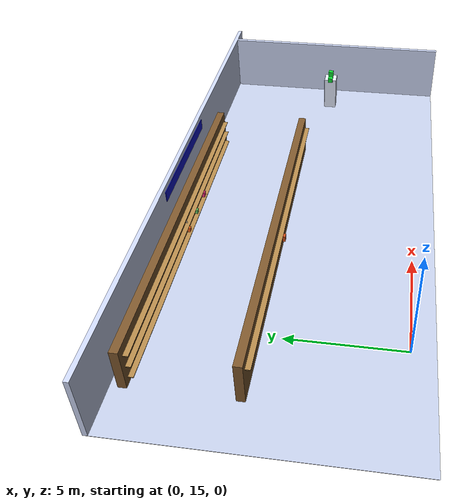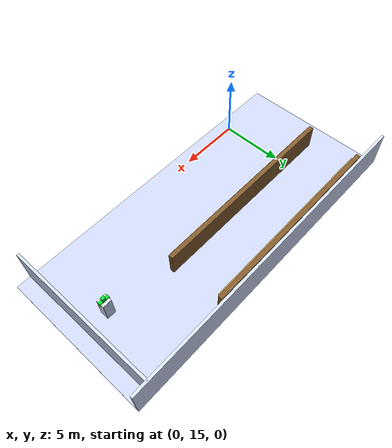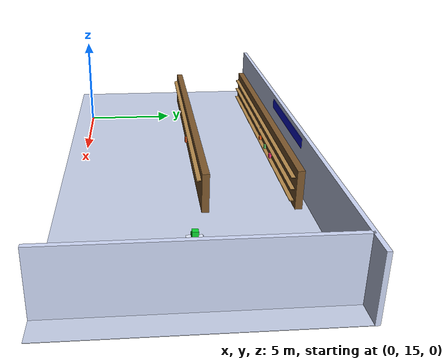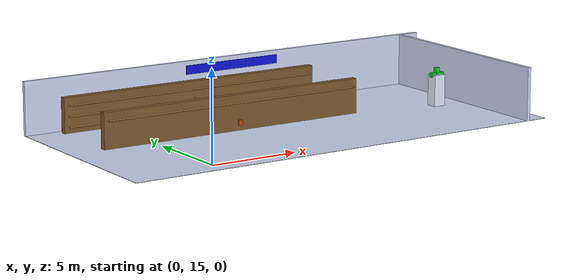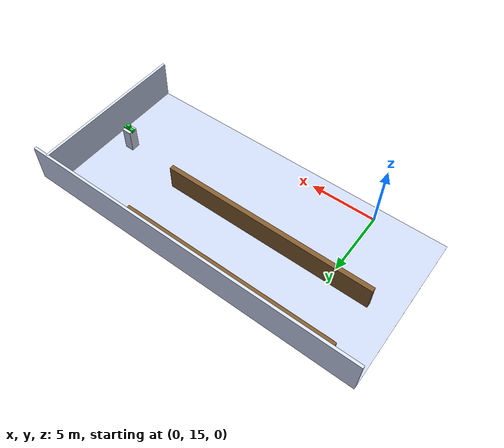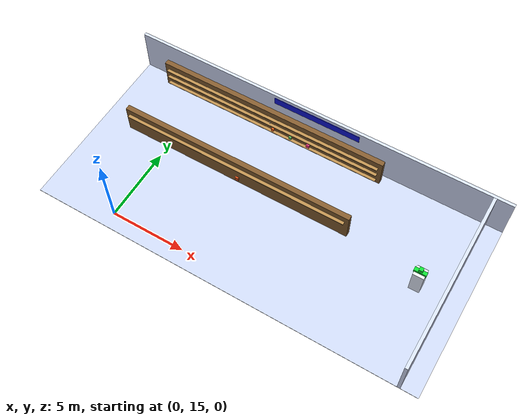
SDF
<sdf version="1.9">
 <world name="hospital">
  <model name="ph_sol">
   <static>true</static>
   <pose>8 20 0.01 0 0 0</pose>
   <link name="l">
    <visual name="v">
     <geometry><box><size>26 12 0.02</size></box></geometry>
     <material><ambient>0.78 0.82 0.92 1</ambient><diffuse>0.78 0.82 0.92 1</diffuse></material>
    </visual>
   </link>
  </model>
  <model name="ph_n">
   <static>true</static>
   <pose>8 26 1.5 0 0 0</pose>
   <link name="l">
    <collision name="c"><geometry><box><size>26 0.2 3</size></box></geometry></collision>
    <visual name="v">
     <geometry><box><size>26 0.2 3</size></box></geometry>
     <material><ambient>0.82 0.86 0.98 1</ambient><diffuse>0.82 0.86 0.98 1</diffuse></material>
    </visual>
   </link>
  </model>
  <model name="ph_e">
   <static>true</static>
   <pose>19.8 20 1.5 0 0 0</pose>
   <link name="l">
    <collision name="c"><geometry><box><size>0.2 12 3</size></box></geometry></collision>
    <visual name="v">
     <geometry><box><size>0.2 12 3</size></box></geometry>
     <material><ambient>0.82 0.86 0.98 1</ambient><diffuse>0.82 0.86 0.98 1</diffuse></material>
    </visual>
   </link>
  </model>
  <model name="sign_ph">
   <static>true</static>
   <pose>8 25.9 2.5 0 0 0</pose>
   <link name="l">
    <visual name="v">
     <geometry><box><size>6 0.06 0.5</size></box></geometry>
     <material>
      <ambient>0.05 0.08 0.85 1</ambient>
      <diffuse>0.05 0.08 0.85 1</diffuse>
      <emissive>0.02 0.03 0.35 1</emissive>
     </material>
    </visual>
   </link>
  </model>
  <model name="cxph_h">
   <static>true</static>
   <pose>18 20 1.8 0 0 0</pose>
   <link name="l">
    <visual name="v">
     <geometry><box><size>0.8 0.25 0.25</size></box></geometry>
     <material>
      <ambient>0.05 0.85 0.2 1</ambient>
      <diffuse>0.05 0.85 0.2 1</diffuse>
      <emissive>0.02 0.35 0.08 1</emissive>
     </material>
    </visual>
   </link>
  </model>
  <model name="cxph_v">
   <static>true</static>
   <pose>18 20 1.8 0 0 0</pose>
   <link name="l">
    <visual name="v">
     <geometry><box><size>0.25 0.25 0.8</size></box></geometry>
     <material>
      <ambient>0.05 0.85 0.2 1</ambient>
      <diffuse>0.05 0.85 0.2 1</diffuse>
      <emissive>0.02 0.35 0.08 1</emissive>
     </material>
    </visual>
   </link>
  </model>
  <model name="et1">
   <static>true</static>
   <pose>5 25.4 1.0 0 0 0</pose>
   <link name="l">
    <collision name="c"><geometry><box><size>16 0.35 2</size></box></geometry></collision>
    <visual name="v">
     <geometry><box><size>16 0.35 2</size></box></geometry>
     <material><ambient>0.5 0.35 0.18 1</ambient><diffuse>0.5 0.35 0.18 1</diffuse></material>
    </visual>
   </link>
  </model>
  <model name="et1p1">
   <static>true</static>
   <pose>5 25.15 0.35 0 0 0</pose>
   <link name="l">
    <visual name="v">
     <geometry><box><size>15.5 0.28 0.04</size></box></geometry>
     <material><ambient>0.72 0.55 0.3 1</ambient><diffuse>0.72 0.55 0.3 1</diffuse></material>
    </visual>
   </link>
  </model>
  <model name="et1p2">
   <static>true</static>
   <pose>5 25.15 0.95 0 0 0</pose>
   <link name="l">
    <visual name="v">
     <geometry><box><size>15.5 0.28 0.04</size></box></geometry>
     <material><ambient>0.72 0.55 0.3 1</ambient><diffuse>0.72 0.55 0.3 1</diffuse></material>
    </visual>
   </link>
  </model>
  <model name="et1p3">
   <static>true</static>
   <pose>5 25.15 1.55 0 0 0</pose>
   <link name="l">
    <visual name="v">
     <geometry><box><size>15.5 0.28 0.04</size></box></geometry>
     <material><ambient>0.72 0.55 0.3 1</ambient><diffuse>0.72 0.55 0.3 1</diffuse></material>
    </visual>
   </link>
  </model>
  <model name="et2">
   <static>true</static>
   <pose>5 21 1.0 0 0 0</pose>
   <link name="l">
    <collision name="c"><geometry><box><size>16 0.35 2</size></box></geometry></collision>
    <visual name="v">
     <geometry><box><size>16 0.35 2</size></box></geometry>
     <material><ambient>0.5 0.35 0.18 1</ambient><diffuse>0.5 0.35 0.18 1</diffuse></material>
    </visual>
   </link>
  </model>
  <model name="et2p3">
   <static>true</static>
   <pose>5 20.75 1.55 0 0 0</pose>
   <link name="l">
    <visual name="v">
     <geometry><box><size>15.5 0.28 0.04</size></box></geometry>
     <material><ambient>0.72 0.55 0.3 1</ambient><diffuse>0.72 0.55 0.3 1</diffuse></material>
    </visual>
   </link>
  </model>
  <model name="ma7">
   <static>true</static>
   <pose>5.3 25.15 0.47 0 0 0</pose>
   <link name="l">
    <visual name="v">
     <geometry><box><size>0.18 0.12 0.2</size></box></geometry>
     <material><ambient>1 0.4 0.1 1</ambient><diffuse>1 0.4 0.1 1</diffuse></material>
    </visual>
   </link>
  </model>
  <model name="ma8">
   <static>true</static>
   <pose>6.6 25.15 0.47 0 0 0</pose>
   <link name="l">
    <visual name="v">
     <geometry><box><size>0.18 0.12 0.2</size></box></geometry>
     <material><ambient>0.4 0.8 0.4 1</ambient><diffuse>0.4 0.8 0.4 1</diffuse></material>
    </visual>
   </link>
  </model>
  <model name="ma9">
   <static>true</static>
   <pose>7.9 25.15 0.47 0 0 0</pose>
   <link name="l">
    <visual name="v">
     <geometry><box><size>0.22 0.12 0.26</size></box></geometry>
     <material><ambient>1 0.2 0.5 1</ambient><diffuse>1 0.2 0.5 1</diffuse></material>
    </visual>
   </link>
  </model>
  <model name="am3">
   <static>true</static>
   <pose>5.1 25.15 1.07 0 0 0</pose>
   <link name="l">
    <visual name="v">
     <geometry><cylinder><radius>0.025</radius><length>0.1</length></cylinder></geometry>
     <material><ambient>0.9 0.9 0.92 0.7</ambient><diffuse>0.9 0.9 0.92 0.7</diffuse></material>
    </visual>
   </link>
  </model>
  <model name="mb7">
   <static>true</static>
   <pose>5.3 20.75 0.47 0 0 0</pose>
   <link name="l">
    <visual name="v">
     <geometry><box><size>0.22 0.12 0.28</size></box></geometry>
     <material><ambient>0.8 0.3 0.1 1</ambient><diffuse>0.8 0.3 0.1 1</diffuse></material>
    </visual>
   </link>
  </model>
  <model name="frigo">
   <static>true</static>
   <pose>18 20 0.9 0 0 0</pose>
   <link name="l">
    <collision name="c"><geometry><box><size>0.7 0.65 1.8</size></box></geometry></collision>
    <visual name="c">
     <geometry><box><size>0.7 0.65 1.8</size></box></geometry>
     <material><ambient>0.9 0.93 1 1</ambient><diffuse>0.9 0.93 1 1</diffuse></material>
    </visual>
    <visual name="porte">
     <pose>0 0.34 0 0 0 0</pose>
     <geometry><box><size>0.66 0.02 1.76</size></box></geometry>
     <material><ambient>0.7 0.8 0.98 0.5</ambient><diffuse>0.7 0.8 0.98 0.5</diffuse></material>
    </visual>
    <visual name="led">
     <pose>0 0.35 0.7 0 0 0</pose>
     <geometry><cylinder><radius>0.018</radius><length>0.02</length></cylinder></geometry>
     <material><ambient>0 1 0 1</ambient><diffuse>0 1 0 1</diffuse><emissive>0 0.5 0 1</emissive></material>
    </visual>
   </link>
  </model>
 </world>
</sdf>
